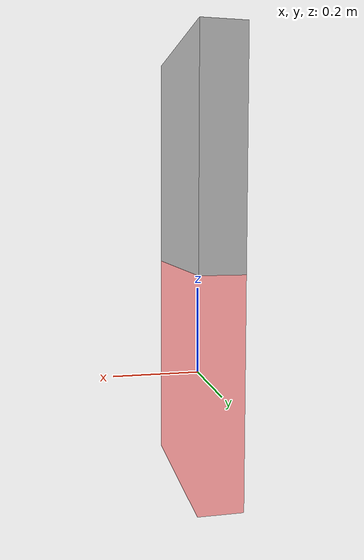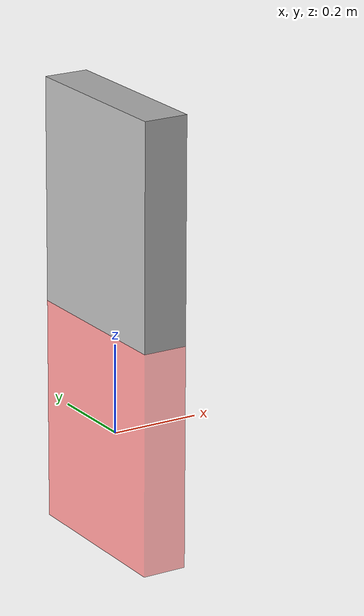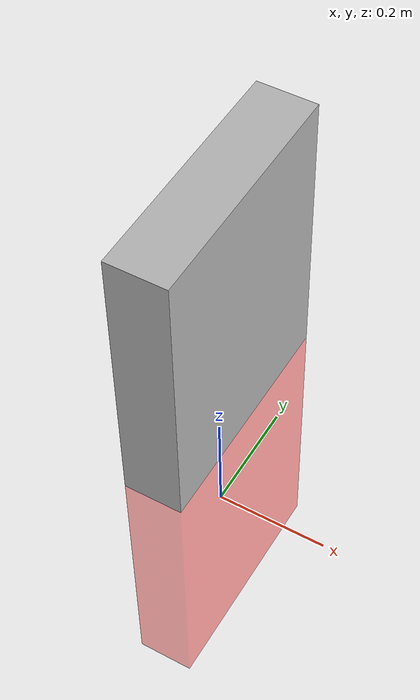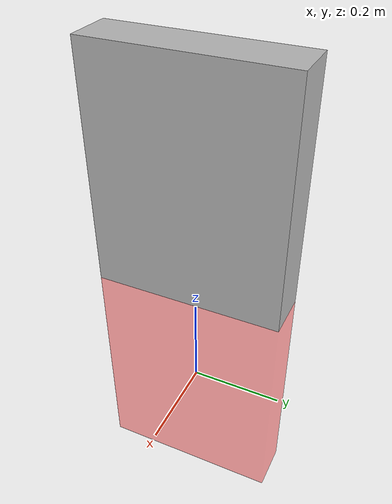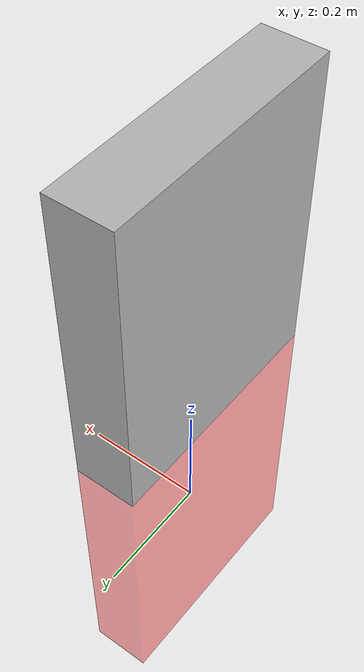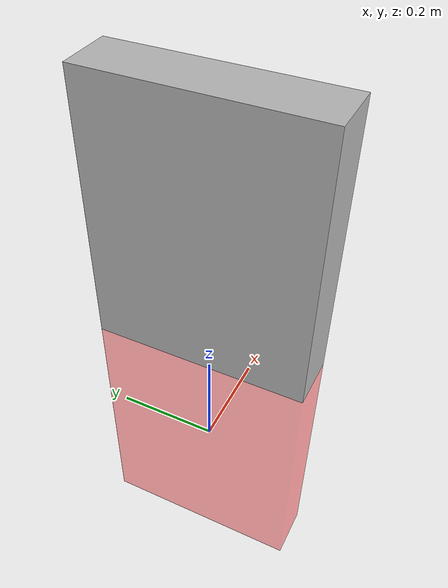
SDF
<?xml version='1.0'?>
<sdf version="1.4">
  <model name="door">
    <link name="base">
      <inertial>
        <mass>1.0</mass>
        <inertia>
          <ixx>0.01</ixx>
          <iyy>0.01</iyy>
          <izz>0.01</izz>
          <ixy>0.0</ixy>
          <iyz>0.0</iyz>
          <ixz>0.0</ixz>
        </inertia>
      </inertial>
      <visual name="visual">
        <geometry>
          <box>
            <size>0.1 0.4 0.5</size>
          </box>
        </geometry>
        <material>
          <diffuse>1 0 0 0.4</diffuse>
        </material>
      </visual>
    </link>
    <link name="top">
      <pose>
        0 0 0.5 0 0 0
      </pose>
      <inertial>
        <mass>1.0</mass>
        <inertia>
          <ixx>0.01</ixx>
          <iyy>0.01</iyy>
          <izz>0.01</izz>
          <ixy>0.0</ixy>
          <iyz>0.0</iyz>
          <ixz>0.0</ixz>
        </inertia>
      </inertial>
      <collision name="collision">
        <geometry>
          <box>
            <size>0.1 0.4 0.5</size>
          </box>
        </geometry>
      </collision>
      <visual name="visual">
        <geometry>
          <box>
            <size>0.1 0.4 0.5</size>
          </box>
        </geometry>
      </visual>
    </link>
    <joint name="fixed_joint" type="fixed">
      <parent>base</parent>
      <child>top</child>
    </joint>
  </model>
</sdf>
